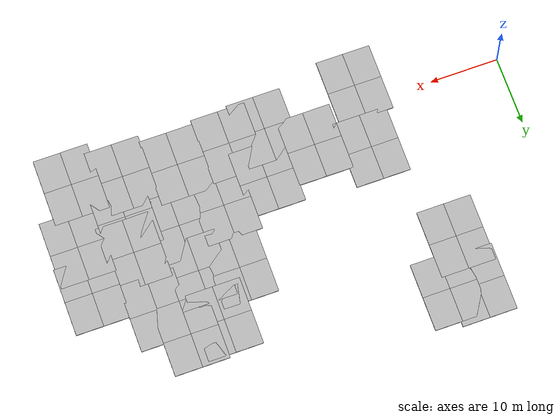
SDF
<sdf version="1.7">
 <world name="default">
  <model name="mud_box_clone_9">
   <static>1</static>
   <link name="link">
    <collision name="collision"><geometry><box><size>8 10 0.2</size></box></geometry></collision>
    <visual name="visual_1">
     <pose>-2 2.5 0 0 -0 0</pose>
     <cast_shadows>0</cast_shadows>
     <geometry><box><size>4 5 0.2</size></box></geometry>
     <material>
      <script>
       <uri>model://mud_box/materials/scripts</uri>
       <uri>model://mud_box/materials/textures</uri>
       <name>vrc/mud</name>
      </script>
     </material>
    </visual>
    <visual name="visual_2">
     <pose>2 2.5 0 0 -0 0</pose>
     <cast_shadows>0</cast_shadows>
     <geometry><box><size>4 5 0.2</size></box></geometry>
     <material>
      <script>
       <uri>model://mud_box/materials/scripts</uri>
       <uri>model://mud_box/materials/textures</uri>
       <name>vrc/mud</name>
      </script>
     </material>
    </visual>
    <visual name="visual_3">
     <pose>2 -2.5 0 0 -0 0</pose>
     <cast_shadows>0</cast_shadows>
     <geometry><box><size>4 5 0.2</size></box></geometry>
     <material>
      <script>
       <uri>model://mud_box/materials/scripts</uri>
       <uri>model://mud_box/materials/textures</uri>
       <name>vrc/mud</name>
      </script>
     </material>
    </visual>
    <visual name="visual_4">
     <pose>-2 -2.5 0 0 -0 0</pose>
     <cast_shadows>0</cast_shadows>
     <geometry><box><size>4 5 0.2</size></box></geometry>
     <material>
      <script>
       <uri>model://mud_box/materials/scripts</uri>
       <uri>model://mud_box/materials/textures</uri>
       <name>vrc/mud</name>
      </script>
     </material>
    </visual>
   </link>
   <pose>20.3748 -3.19662 0 0 -0 0</pose>
  </model>
  <model name="mud_box_clone_13">
   <static>1</static>
   <link name="link">
    <collision name="collision"><geometry><box><size>8 10 0.2</size></box></geometry></collision>
    <visual name="visual_1">
     <pose>-2 2.5 0 0 -0 0</pose>
     <cast_shadows>0</cast_shadows>
     <geometry><box><size>4 5 0.2</size></box></geometry>
     <material>
      <script>
       <uri>model://mud_box/materials/scripts</uri>
       <uri>model://mud_box/materials/textures</uri>
       <name>vrc/mud</name>
      </script>
     </material>
    </visual>
    <visual name="visual_2">
     <pose>2 2.5 0 0 -0 0</pose>
     <cast_shadows>0</cast_shadows>
     <geometry><box><size>4 5 0.2</size></box></geometry>
     <material>
      <script>
       <uri>model://mud_box/materials/scripts</uri>
       <uri>model://mud_box/materials/textures</uri>
       <name>vrc/mud</name>
      </script>
     </material>
    </visual>
    <visual name="visual_3">
     <pose>2 -2.5 0 0 -0 0</pose>
     <cast_shadows>0</cast_shadows>
     <geometry><box><size>4 5 0.2</size></box></geometry>
     <material>
      <script>
       <uri>model://mud_box/materials/scripts</uri>
       <uri>model://mud_box/materials/textures</uri>
       <name>vrc/mud</name>
      </script>
     </material>
    </visual>
    <visual name="visual_4">
     <pose>-2 -2.5 0 0 -0 0</pose>
     <cast_shadows>0</cast_shadows>
     <geometry><box><size>4 5 0.2</size></box></geometry>
     <material>
      <script>
       <uri>model://mud_box/materials/scripts</uri>
       <uri>model://mud_box/materials/textures</uri>
       <name>vrc/mud</name>
      </script>
     </material>
    </visual>
   </link>
   <pose>21.3167 6.26549 0 0 -0 0</pose>
  </model>
  <model name="mud_box_clone_14">
   <static>1</static>
   <link name="link">
    <collision name="collision"><geometry><box><size>8 10 0.2</size></box></geometry></collision>
    <visual name="visual_1">
     <pose>-2 2.5 0 0 -0 0</pose>
     <cast_shadows>0</cast_shadows>
     <geometry><box><size>4 5 0.2</size></box></geometry>
     <material>
      <script>
       <uri>model://mud_box/materials/scripts</uri>
       <uri>model://mud_box/materials/textures</uri>
       <name>vrc/mud</name>
      </script>
     </material>
    </visual>
    <visual name="visual_2">
     <pose>2 2.5 0 0 -0 0</pose>
     <cast_shadows>0</cast_shadows>
     <geometry><box><size>4 5 0.2</size></box></geometry>
     <material>
      <script>
       <uri>model://mud_box/materials/scripts</uri>
       <uri>model://mud_box/materials/textures</uri>
       <name>vrc/mud</name>
      </script>
     </material>
    </visual>
    <visual name="visual_3">
     <pose>2 -2.5 0 0 -0 0</pose>
     <cast_shadows>0</cast_shadows>
     <geometry><box><size>4 5 0.2</size></box></geometry>
     <material>
      <script>
       <uri>model://mud_box/materials/scripts</uri>
       <uri>model://mud_box/materials/textures</uri>
       <name>vrc/mud</name>
      </script>
     </material>
    </visual>
    <visual name="visual_4">
     <pose>-2 -2.5 0 0 -0 0</pose>
     <cast_shadows>0</cast_shadows>
     <geometry><box><size>4 5 0.2</size></box></geometry>
     <material>
      <script>
       <uri>model://mud_box/materials/scripts</uri>
       <uri>model://mud_box/materials/textures</uri>
       <name>vrc/mud</name>
      </script>
     </material>
    </visual>
   </link>
   <pose>28.7382 3.2623 0 0 -0 0</pose>
  </model>
  <model name="mud_box_clone_15">
   <static>1</static>
   <link name="link">
    <collision name="collision"><geometry><box><size>8 10 0.2</size></box></geometry></collision>
    <visual name="visual_1">
     <pose>-2 2.5 0 0 -0 0</pose>
     <cast_shadows>0</cast_shadows>
     <geometry><box><size>4 5 0.2</size></box></geometry>
     <material>
      <script>
       <uri>model://mud_box/materials/scripts</uri>
       <uri>model://mud_box/materials/textures</uri>
       <name>vrc/mud</name>
      </script>
     </material>
    </visual>
    <visual name="visual_2">
     <pose>2 2.5 0 0 -0 0</pose>
     <cast_shadows>0</cast_shadows>
     <geometry><box><size>4 5 0.2</size></box></geometry>
     <material>
      <script>
       <uri>model://mud_box/materials/scripts</uri>
       <uri>model://mud_box/materials/textures</uri>
       <name>vrc/mud</name>
      </script>
     </material>
    </visual>
    <visual name="visual_3">
     <pose>2 -2.5 0 0 -0 0</pose>
     <cast_shadows>0</cast_shadows>
     <geometry><box><size>4 5 0.2</size></box></geometry>
     <material>
      <script>
       <uri>model://mud_box/materials/scripts</uri>
       <uri>model://mud_box/materials/textures</uri>
       <name>vrc/mud</name>
      </script>
     </material>
    </visual>
    <visual name="visual_4">
     <pose>-2 -2.5 0 0 -0 0</pose>
     <cast_shadows>0</cast_shadows>
     <geometry><box><size>4 5 0.2</size></box></geometry>
     <material>
      <script>
       <uri>model://mud_box/materials/scripts</uri>
       <uri>model://mud_box/materials/textures</uri>
       <name>vrc/mud</name>
      </script>
     </material>
    </visual>
   </link>
   <pose>34.5719 -1.36093 0 0 -0 0</pose>
  </model>
  <model name="mud_box_clone_22">
   <static>1</static>
   <link name="link">
    <collision name="collision"><geometry><box><size>8 10 0.2</size></box></geometry></collision>
    <visual name="visual_1">
     <pose>-2 2.5 0 0 -0 0</pose>
     <cast_shadows>0</cast_shadows>
     <geometry><box><size>4 5 0.2</size></box></geometry>
     <material>
      <script>
       <uri>model://mud_box/materials/scripts</uri>
       <uri>model://mud_box/materials/textures</uri>
       <name>vrc/mud</name>
      </script>
     </material>
    </visual>
    <visual name="visual_2">
     <pose>2 2.5 0 0 -0 0</pose>
     <cast_shadows>0</cast_shadows>
     <geometry><box><size>4 5 0.2</size></box></geometry>
     <material>
      <script>
       <uri>model://mud_box/materials/scripts</uri>
       <uri>model://mud_box/materials/textures</uri>
       <name>vrc/mud</name>
      </script>
     </material>
    </visual>
    <visual name="visual_3">
     <pose>2 -2.5 0 0 -0 0</pose>
     <cast_shadows>0</cast_shadows>
     <geometry><box><size>4 5 0.2</size></box></geometry>
     <material>
      <script>
       <uri>model://mud_box/materials/scripts</uri>
       <uri>model://mud_box/materials/textures</uri>
       <name>vrc/mud</name>
      </script>
     </material>
    </visual>
    <visual name="visual_4">
     <pose>-2 -2.5 0 0 -0 0</pose>
     <cast_shadows>0</cast_shadows>
     <geometry><box><size>4 5 0.2</size></box></geometry>
     <material>
      <script>
       <uri>model://mud_box/materials/scripts</uri>
       <uri>model://mud_box/materials/textures</uri>
       <name>vrc/mud</name>
      </script>
     </material>
    </visual>
   </link>
   <pose>39.9973 -0.999067 0 0 -0 0</pose>
  </model>
  <model name="mud_box_clone_23">
   <static>1</static>
   <link name="link">
    <collision name="collision"><geometry><box><size>8 10 0.2</size></box></geometry></collision>
    <visual name="visual_1">
     <pose>-2 2.5 0 0 -0 0</pose>
     <cast_shadows>0</cast_shadows>
     <geometry><box><size>4 5 0.2</size></box></geometry>
     <material>
      <script>
       <uri>model://mud_box/materials/scripts</uri>
       <uri>model://mud_box/materials/textures</uri>
       <name>vrc/mud</name>
      </script>
     </material>
    </visual>
    <visual name="visual_2">
     <pose>2 2.5 0 0 -0 0</pose>
     <cast_shadows>0</cast_shadows>
     <geometry><box><size>4 5 0.2</size></box></geometry>
     <material>
      <script>
       <uri>model://mud_box/materials/scripts</uri>
       <uri>model://mud_box/materials/textures</uri>
       <name>vrc/mud</name>
      </script>
     </material>
    </visual>
    <visual name="visual_3">
     <pose>2 -2.5 0 0 -0 0</pose>
     <cast_shadows>0</cast_shadows>
     <geometry><box><size>4 5 0.2</size></box></geometry>
     <material>
      <script>
       <uri>model://mud_box/materials/scripts</uri>
       <uri>model://mud_box/materials/textures</uri>
       <name>vrc/mud</name>
      </script>
     </material>
    </visual>
    <visual name="visual_4">
     <pose>-2 -2.5 0 0 -0 0</pose>
     <cast_shadows>0</cast_shadows>
     <geometry><box><size>4 5 0.2</size></box></geometry>
     <material>
      <script>
       <uri>model://mud_box/materials/scripts</uri>
       <uri>model://mud_box/materials/textures</uri>
       <name>vrc/mud</name>
      </script>
     </material>
    </visual>
   </link>
   <pose>36.6587 5.53181 0 0 -0 0</pose>
  </model>
  <model name="mud_box_clone_24">
   <static>1</static>
   <link name="link">
    <collision name="collision"><geometry><box><size>8 10 0.2</size></box></geometry></collision>
    <visual name="visual_1">
     <pose>-2 2.5 0 0 -0 0</pose>
     <cast_shadows>0</cast_shadows>
     <geometry><box><size>4 5 0.2</size></box></geometry>
     <material>
      <script>
       <uri>model://mud_box/materials/scripts</uri>
       <uri>model://mud_box/materials/textures</uri>
       <name>vrc/mud</name>
      </script>
     </material>
    </visual>
    <visual name="visual_2">
     <pose>2 2.5 0 0 -0 0</pose>
     <cast_shadows>0</cast_shadows>
     <geometry><box><size>4 5 0.2</size></box></geometry>
     <material>
      <script>
       <uri>model://mud_box/materials/scripts</uri>
       <uri>model://mud_box/materials/textures</uri>
       <name>vrc/mud</name>
      </script>
     </material>
    </visual>
    <visual name="visual_3">
     <pose>2 -2.5 0 0 -0 0</pose>
     <cast_shadows>0</cast_shadows>
     <geometry><box><size>4 5 0.2</size></box></geometry>
     <material>
      <script>
       <uri>model://mud_box/materials/scripts</uri>
       <uri>model://mud_box/materials/textures</uri>
       <name>vrc/mud</name>
      </script>
     </material>
    </visual>
    <visual name="visual_4">
     <pose>-2 -2.5 0 0 -0 0</pose>
     <cast_shadows>0</cast_shadows>
     <geometry><box><size>4 5 0.2</size></box></geometry>
     <material>
      <script>
       <uri>model://mud_box/materials/scripts</uri>
       <uri>model://mud_box/materials/textures</uri>
       <name>vrc/mud</name>
      </script>
     </material>
    </visual>
   </link>
   <pose>43.725 7.4379 0 0 -0 0</pose>
  </model>
  <model name="mud_box_clone_26">
   <static>1</static>
   <link name="link">
    <collision name="collision"><geometry><box><size>8 10 0.2</size></box></geometry></collision>
    <visual name="visual_1">
     <pose>-2 2.5 0 0 -0 0</pose>
     <cast_shadows>0</cast_shadows>
     <geometry><box><size>4 5 0.2</size></box></geometry>
     <material>
      <script>
       <uri>model://mud_box/materials/scripts</uri>
       <uri>model://mud_box/materials/textures</uri>
       <name>vrc/mud</name>
      </script>
     </material>
    </visual>
    <visual name="visual_2">
     <pose>2 2.5 0 0 -0 0</pose>
     <cast_shadows>0</cast_shadows>
     <geometry><box><size>4 5 0.2</size></box></geometry>
     <material>
      <script>
       <uri>model://mud_box/materials/scripts</uri>
       <uri>model://mud_box/materials/textures</uri>
       <name>vrc/mud</name>
      </script>
     </material>
    </visual>
    <visual name="visual_3">
     <pose>2 -2.5 0 0 -0 0</pose>
     <cast_shadows>0</cast_shadows>
     <geometry><box><size>4 5 0.2</size></box></geometry>
     <material>
      <script>
       <uri>model://mud_box/materials/scripts</uri>
       <uri>model://mud_box/materials/textures</uri>
       <name>vrc/mud</name>
      </script>
     </material>
    </visual>
    <visual name="visual_4">
     <pose>-2 -2.5 0 0 -0 0</pose>
     <cast_shadows>0</cast_shadows>
     <geometry><box><size>4 5 0.2</size></box></geometry>
     <material>
      <script>
       <uri>model://mud_box/materials/scripts</uri>
       <uri>model://mud_box/materials/textures</uri>
       <name>vrc/mud</name>
      </script>
     </material>
    </visual>
   </link>
   <pose>47.8671 -0.424382 0 0 -0 0</pose>
  </model>
  <model name="mud_box_clone_28">
   <static>1</static>
   <link name="link">
    <collision name="collision"><geometry><box><size>8 10 0.2</size></box></geometry></collision>
    <visual name="visual_1">
     <pose>-2 2.5 0 0 -0 0</pose>
     <cast_shadows>0</cast_shadows>
     <geometry><box><size>4 5 0.2</size></box></geometry>
     <material>
      <script>
       <uri>model://mud_box/materials/scripts</uri>
       <uri>model://mud_box/materials/textures</uri>
       <name>vrc/mud</name>
      </script>
     </material>
    </visual>
    <visual name="visual_2">
     <pose>2 2.5 0 0 -0 0</pose>
     <cast_shadows>0</cast_shadows>
     <geometry><box><size>4 5 0.2</size></box></geometry>
     <material>
      <script>
       <uri>model://mud_box/materials/scripts</uri>
       <uri>model://mud_box/materials/textures</uri>
       <name>vrc/mud</name>
      </script>
     </material>
    </visual>
    <visual name="visual_3">
     <pose>2 -2.5 0 0 -0 0</pose>
     <cast_shadows>0</cast_shadows>
     <geometry><box><size>4 5 0.2</size></box></geometry>
     <material>
      <script>
       <uri>model://mud_box/materials/scripts</uri>
       <uri>model://mud_box/materials/textures</uri>
       <name>vrc/mud</name>
      </script>
     </material>
    </visual>
    <visual name="visual_4">
     <pose>-2 -2.5 0 0 -0 0</pose>
     <cast_shadows>0</cast_shadows>
     <geometry><box><size>4 5 0.2</size></box></geometry>
     <material>
      <script>
       <uri>model://mud_box/materials/scripts</uri>
       <uri>model://mud_box/materials/textures</uri>
       <name>vrc/mud</name>
      </script>
     </material>
    </visual>
   </link>
   <pose>50.5726 8.14811 0 0 -0 0</pose>
  </model>
  <model name="mud_box_clone_29">
   <static>1</static>
   <link name="link">
    <collision name="collision"><geometry><box><size>8 10 0.2</size></box></geometry></collision>
    <visual name="visual_1">
     <pose>-2 2.5 0 0 -0 0</pose>
     <cast_shadows>0</cast_shadows>
     <geometry><box><size>4 5 0.2</size></box></geometry>
     <material>
      <script>
       <uri>model://mud_box/materials/scripts</uri>
       <uri>model://mud_box/materials/textures</uri>
       <name>vrc/mud</name>
      </script>
     </material>
    </visual>
    <visual name="visual_2">
     <pose>2 2.5 0 0 -0 0</pose>
     <cast_shadows>0</cast_shadows>
     <geometry><box><size>4 5 0.2</size></box></geometry>
     <material>
      <script>
       <uri>model://mud_box/materials/scripts</uri>
       <uri>model://mud_box/materials/textures</uri>
       <name>vrc/mud</name>
      </script>
     </material>
    </visual>
    <visual name="visual_3">
     <pose>2 -2.5 0 0 -0 0</pose>
     <cast_shadows>0</cast_shadows>
     <geometry><box><size>4 5 0.2</size></box></geometry>
     <material>
      <script>
       <uri>model://mud_box/materials/scripts</uri>
       <uri>model://mud_box/materials/textures</uri>
       <name>vrc/mud</name>
      </script>
     </material>
    </visual>
    <visual name="visual_4">
     <pose>-2 -2.5 0 0 -0 0</pose>
     <cast_shadows>0</cast_shadows>
     <geometry><box><size>4 5 0.2</size></box></geometry>
     <material>
      <script>
       <uri>model://mud_box/materials/scripts</uri>
       <uri>model://mud_box/materials/textures</uri>
       <name>vrc/mud</name>
      </script>
     </material>
    </visual>
   </link>
   <pose>50.1882 15.2615 0 0 -0 0</pose>
  </model>
  <model name="mud_box_clone_32">
   <static>1</static>
   <link name="link">
    <collision name="collision"><geometry><box><size>8 10 0.2</size></box></geometry></collision>
    <visual name="visual_1">
     <pose>-2 2.5 0 0 -0 0</pose>
     <cast_shadows>0</cast_shadows>
     <geometry><box><size>4 5 0.2</size></box></geometry>
     <material>
      <script>
       <uri>model://mud_box/materials/scripts</uri>
       <uri>model://mud_box/materials/textures</uri>
       <name>vrc/mud</name>
      </script>
     </material>
    </visual>
    <visual name="visual_2">
     <pose>2 2.5 0 0 -0 0</pose>
     <cast_shadows>0</cast_shadows>
     <geometry><box><size>4 5 0.2</size></box></geometry>
     <material>
      <script>
       <uri>model://mud_box/materials/scripts</uri>
       <uri>model://mud_box/materials/textures</uri>
       <name>vrc/mud</name>
      </script>
     </material>
    </visual>
    <visual name="visual_3">
     <pose>2 -2.5 0 0 -0 0</pose>
     <cast_shadows>0</cast_shadows>
     <geometry><box><size>4 5 0.2</size></box></geometry>
     <material>
      <script>
       <uri>model://mud_box/materials/scripts</uri>
       <uri>model://mud_box/materials/textures</uri>
       <name>vrc/mud</name>
      </script>
     </material>
    </visual>
    <visual name="visual_4">
     <pose>-2 -2.5 0 0 -0 0</pose>
     <cast_shadows>0</cast_shadows>
     <geometry><box><size>4 5 0.2</size></box></geometry>
     <material>
      <script>
       <uri>model://mud_box/materials/scripts</uri>
       <uri>model://mud_box/materials/textures</uri>
       <name>vrc/mud</name>
      </script>
     </material>
    </visual>
   </link>
   <pose>55.6931 -1.35237 0 0 -0 0</pose>
  </model>
  <model name="mud_box_clone_33">
   <static>1</static>
   <link name="link">
    <collision name="collision"><geometry><box><size>8 10 0.2</size></box></geometry></collision>
    <visual name="visual_1">
     <pose>-2 2.5 0 0 -0 0</pose>
     <cast_shadows>0</cast_shadows>
     <geometry><box><size>4 5 0.2</size></box></geometry>
     <material>
      <script>
       <uri>model://mud_box/materials/scripts</uri>
       <uri>model://mud_box/materials/textures</uri>
       <name>vrc/mud</name>
      </script>
     </material>
    </visual>
    <visual name="visual_2">
     <pose>2 2.5 0 0 -0 0</pose>
     <cast_shadows>0</cast_shadows>
     <geometry><box><size>4 5 0.2</size></box></geometry>
     <material>
      <script>
       <uri>model://mud_box/materials/scripts</uri>
       <uri>model://mud_box/materials/textures</uri>
       <name>vrc/mud</name>
      </script>
     </material>
    </visual>
    <visual name="visual_3">
     <pose>2 -2.5 0 0 -0 0</pose>
     <cast_shadows>0</cast_shadows>
     <geometry><box><size>4 5 0.2</size></box></geometry>
     <material>
      <script>
       <uri>model://mud_box/materials/scripts</uri>
       <uri>model://mud_box/materials/textures</uri>
       <name>vrc/mud</name>
      </script>
     </material>
    </visual>
    <visual name="visual_4">
     <pose>-2 -2.5 0 0 -0 0</pose>
     <cast_shadows>0</cast_shadows>
     <geometry><box><size>4 5 0.2</size></box></geometry>
     <material>
      <script>
       <uri>model://mud_box/materials/scripts</uri>
       <uri>model://mud_box/materials/textures</uri>
       <name>vrc/mud</name>
      </script>
     </material>
    </visual>
   </link>
   <pose>57.2561 4.39806 0 0 -0 0</pose>
  </model>
  <model name="mud_box_clone_34">
   <static>1</static>
   <link name="link">
    <collision name="collision"><geometry><box><size>8 10 0.2</size></box></geometry></collision>
    <visual name="visual_1">
     <pose>-2 2.5 0 0 -0 0</pose>
     <cast_shadows>0</cast_shadows>
     <geometry><box><size>4 5 0.2</size></box></geometry>
     <material>
      <script>
       <uri>model://mud_box/materials/scripts</uri>
       <uri>model://mud_box/materials/textures</uri>
       <name>vrc/mud</name>
      </script>
     </material>
    </visual>
    <visual name="visual_2">
     <pose>2 2.5 0 0 -0 0</pose>
     <cast_shadows>0</cast_shadows>
     <geometry><box><size>4 5 0.2</size></box></geometry>
     <material>
      <script>
       <uri>model://mud_box/materials/scripts</uri>
       <uri>model://mud_box/materials/textures</uri>
       <name>vrc/mud</name>
      </script>
     </material>
    </visual>
    <visual name="visual_3">
     <pose>2 -2.5 0 0 -0 0</pose>
     <cast_shadows>0</cast_shadows>
     <geometry><box><size>4 5 0.2</size></box></geometry>
     <material>
      <script>
       <uri>model://mud_box/materials/scripts</uri>
       <uri>model://mud_box/materials/textures</uri>
       <name>vrc/mud</name>
      </script>
     </material>
    </visual>
    <visual name="visual_4">
     <pose>-2 -2.5 0 0 -0 0</pose>
     <cast_shadows>0</cast_shadows>
     <geometry><box><size>4 5 0.2</size></box></geometry>
     <material>
      <script>
       <uri>model://mud_box/materials/scripts</uri>
       <uri>model://mud_box/materials/textures</uri>
       <name>vrc/mud</name>
      </script>
     </material>
    </visual>
   </link>
   <pose>57.7878 9.74902 0 0 -0 0</pose>
  </model>
  <model name="mud_box_clone_35">
   <static>1</static>
   <link name="link">
    <collision name="collision"><geometry><box><size>8 10 0.2</size></box></geometry></collision>
    <visual name="visual_1">
     <pose>-2 2.5 0 0 -0 0</pose>
     <cast_shadows>0</cast_shadows>
     <geometry><box><size>4 5 0.2</size></box></geometry>
     <material>
      <script>
       <uri>model://mud_box/materials/scripts</uri>
       <uri>model://mud_box/materials/textures</uri>
       <name>vrc/mud</name>
      </script>
     </material>
    </visual>
    <visual name="visual_2">
     <pose>2 2.5 0 0 -0 0</pose>
     <cast_shadows>0</cast_shadows>
     <geometry><box><size>4 5 0.2</size></box></geometry>
     <material>
      <script>
       <uri>model://mud_box/materials/scripts</uri>
       <uri>model://mud_box/materials/textures</uri>
       <name>vrc/mud</name>
      </script>
     </material>
    </visual>
    <visual name="visual_3">
     <pose>2 -2.5 0 0 -0 0</pose>
     <cast_shadows>0</cast_shadows>
     <geometry><box><size>4 5 0.2</size></box></geometry>
     <material>
      <script>
       <uri>model://mud_box/materials/scripts</uri>
       <uri>model://mud_box/materials/textures</uri>
       <name>vrc/mud</name>
      </script>
     </material>
    </visual>
    <visual name="visual_4">
     <pose>-2 -2.5 0 0 -0 0</pose>
     <cast_shadows>0</cast_shadows>
     <geometry><box><size>4 5 0.2</size></box></geometry>
     <material>
      <script>
       <uri>model://mud_box/materials/scripts</uri>
       <uri>model://mud_box/materials/textures</uri>
       <name>vrc/mud</name>
      </script>
     </material>
    </visual>
   </link>
   <pose>44.6791 16.7579 0 0 -0 0</pose>
  </model>
  <model name="mud_box_clone_45">
   <static>1</static>
   <link name="link">
    <collision name="collision"><geometry><box><size>8 10 0.2</size></box></geometry></collision>
    <visual name="visual_1">
     <pose>-2 2.5 0 0 -0 0</pose>
     <cast_shadows>0</cast_shadows>
     <geometry><box><size>4 5 0.2</size></box></geometry>
     <material>
      <script>
       <uri>model://mud_box/materials/scripts</uri>
       <uri>model://mud_box/materials/textures</uri>
       <name>vrc/mud</name>
      </script>
     </material>
    </visual>
    <visual name="visual_2">
     <pose>2 2.5 0 0 -0 0</pose>
     <cast_shadows>0</cast_shadows>
     <geometry><box><size>4 5 0.2</size></box></geometry>
     <material>
      <script>
       <uri>model://mud_box/materials/scripts</uri>
       <uri>model://mud_box/materials/textures</uri>
       <name>vrc/mud</name>
      </script>
     </material>
    </visual>
    <visual name="visual_3">
     <pose>2 -2.5 0 0 -0 0</pose>
     <cast_shadows>0</cast_shadows>
     <geometry><box><size>4 5 0.2</size></box></geometry>
     <material>
      <script>
       <uri>model://mud_box/materials/scripts</uri>
       <uri>model://mud_box/materials/textures</uri>
       <name>vrc/mud</name>
      </script>
     </material>
    </visual>
    <visual name="visual_4">
     <pose>-2 -2.5 0 0 -0 0</pose>
     <cast_shadows>0</cast_shadows>
     <geometry><box><size>4 5 0.2</size></box></geometry>
     <material>
      <script>
       <uri>model://mud_box/materials/scripts</uri>
       <uri>model://mud_box/materials/textures</uri>
       <name>vrc/mud</name>
      </script>
     </material>
    </visual>
   </link>
   <pose>62.8094 -2.63073 0 0 -0 0</pose>
  </model>
  <model name="mud_box_clone_46">
   <static>1</static>
   <link name="link">
    <collision name="collision"><geometry><box><size>8 10 0.2</size></box></geometry></collision>
    <visual name="visual_1">
     <pose>-2 2.5 0 0 -0 0</pose>
     <cast_shadows>0</cast_shadows>
     <geometry><box><size>4 5 0.2</size></box></geometry>
     <material>
      <script>
       <uri>model://mud_box/materials/scripts</uri>
       <uri>model://mud_box/materials/textures</uri>
       <name>vrc/mud</name>
      </script>
     </material>
    </visual>
    <visual name="visual_2">
     <pose>2 2.5 0 0 -0 0</pose>
     <cast_shadows>0</cast_shadows>
     <geometry><box><size>4 5 0.2</size></box></geometry>
     <material>
      <script>
       <uri>model://mud_box/materials/scripts</uri>
       <uri>model://mud_box/materials/textures</uri>
       <name>vrc/mud</name>
      </script>
     </material>
    </visual>
    <visual name="visual_3">
     <pose>2 -2.5 0 0 -0 0</pose>
     <cast_shadows>0</cast_shadows>
     <geometry><box><size>4 5 0.2</size></box></geometry>
     <material>
      <script>
       <uri>model://mud_box/materials/scripts</uri>
       <uri>model://mud_box/materials/textures</uri>
       <name>vrc/mud</name>
      </script>
     </material>
    </visual>
    <visual name="visual_4">
     <pose>-2 -2.5 0 0 -0 0</pose>
     <cast_shadows>0</cast_shadows>
     <geometry><box><size>4 5 0.2</size></box></geometry>
     <material>
      <script>
       <uri>model://mud_box/materials/scripts</uri>
       <uri>model://mud_box/materials/textures</uri>
       <name>vrc/mud</name>
      </script>
     </material>
    </visual>
   </link>
   <pose>64.9048 6.41387 0 0 -0 0</pose>
  </model>
  <model name="mud_box_clone_47">
   <static>1</static>
   <link name="link">
    <collision name="collision"><geometry><box><size>8 10 0.2</size></box></geometry></collision>
    <visual name="visual_1">
     <pose>-2 2.5 0 0 -0 0</pose>
     <cast_shadows>0</cast_shadows>
     <geometry><box><size>4 5 0.2</size></box></geometry>
     <material>
      <script>
       <uri>model://mud_box/materials/scripts</uri>
       <uri>model://mud_box/materials/textures</uri>
       <name>vrc/mud</name>
      </script>
     </material>
    </visual>
    <visual name="visual_2">
     <pose>2 2.5 0 0 -0 0</pose>
     <cast_shadows>0</cast_shadows>
     <geometry><box><size>4 5 0.2</size></box></geometry>
     <material>
      <script>
       <uri>model://mud_box/materials/scripts</uri>
       <uri>model://mud_box/materials/textures</uri>
       <name>vrc/mud</name>
      </script>
     </material>
    </visual>
    <visual name="visual_3">
     <pose>2 -2.5 0 0 -0 0</pose>
     <cast_shadows>0</cast_shadows>
     <geometry><box><size>4 5 0.2</size></box></geometry>
     <material>
      <script>
       <uri>model://mud_box/materials/scripts</uri>
       <uri>model://mud_box/materials/textures</uri>
       <name>vrc/mud</name>
      </script>
     </material>
    </visual>
    <visual name="visual_4">
     <pose>-2 -2.5 0 0 -0 0</pose>
     <cast_shadows>0</cast_shadows>
     <geometry><box><size>4 5 0.2</size></box></geometry>
     <material>
      <script>
       <uri>model://mud_box/materials/scripts</uri>
       <uri>model://mud_box/materials/textures</uri>
       <name>vrc/mud</name>
      </script>
     </material>
    </visual>
   </link>
   <pose>65.1047 13.4451 0 0 -0 0</pose>
  </model>
  <model name="mud_box_clone_48">
   <static>1</static>
   <link name="link">
    <collision name="collision"><geometry><box><size>8 10 0.2</size></box></geometry></collision>
    <visual name="visual_1">
     <pose>-2 2.5 0 0 -0 0</pose>
     <cast_shadows>0</cast_shadows>
     <geometry><box><size>4 5 0.2</size></box></geometry>
     <material>
      <script>
       <uri>model://mud_box/materials/scripts</uri>
       <uri>model://mud_box/materials/textures</uri>
       <name>vrc/mud</name>
      </script>
     </material>
    </visual>
    <visual name="visual_2">
     <pose>2 2.5 0 0 -0 0</pose>
     <cast_shadows>0</cast_shadows>
     <geometry><box><size>4 5 0.2</size></box></geometry>
     <material>
      <script>
       <uri>model://mud_box/materials/scripts</uri>
       <uri>model://mud_box/materials/textures</uri>
       <name>vrc/mud</name>
      </script>
     </material>
    </visual>
    <visual name="visual_3">
     <pose>2 -2.5 0 0 -0 0</pose>
     <cast_shadows>0</cast_shadows>
     <geometry><box><size>4 5 0.2</size></box></geometry>
     <material>
      <script>
       <uri>model://mud_box/materials/scripts</uri>
       <uri>model://mud_box/materials/textures</uri>
       <name>vrc/mud</name>
      </script>
     </material>
    </visual>
    <visual name="visual_4">
     <pose>-2 -2.5 0 0 -0 0</pose>
     <cast_shadows>0</cast_shadows>
     <geometry><box><size>4 5 0.2</size></box></geometry>
     <material>
      <script>
       <uri>model://mud_box/materials/scripts</uri>
       <uri>model://mud_box/materials/textures</uri>
       <name>vrc/mud</name>
      </script>
     </material>
    </visual>
   </link>
   <pose>57.3993 18.6853 0 0 -0 0</pose>
  </model>
  <model name="mud_box_clone_49">
   <static>1</static>
   <link name="link">
    <collision name="collision"><geometry><box><size>8 10 0.2</size></box></geometry></collision>
    <visual name="visual_1">
     <pose>-2 2.5 0 0 -0 0</pose>
     <cast_shadows>0</cast_shadows>
     <geometry><box><size>4 5 0.2</size></box></geometry>
     <material>
      <script>
       <uri>model://mud_box/materials/scripts</uri>
       <uri>model://mud_box/materials/textures</uri>
       <name>vrc/mud</name>
      </script>
     </material>
    </visual>
    <visual name="visual_2">
     <pose>2 2.5 0 0 -0 0</pose>
     <cast_shadows>0</cast_shadows>
     <geometry><box><size>4 5 0.2</size></box></geometry>
     <material>
      <script>
       <uri>model://mud_box/materials/scripts</uri>
       <uri>model://mud_box/materials/textures</uri>
       <name>vrc/mud</name>
      </script>
     </material>
    </visual>
    <visual name="visual_3">
     <pose>2 -2.5 0 0 -0 0</pose>
     <cast_shadows>0</cast_shadows>
     <geometry><box><size>4 5 0.2</size></box></geometry>
     <material>
      <script>
       <uri>model://mud_box/materials/scripts</uri>
       <uri>model://mud_box/materials/textures</uri>
       <name>vrc/mud</name>
      </script>
     </material>
    </visual>
    <visual name="visual_4">
     <pose>-2 -2.5 0 0 -0 0</pose>
     <cast_shadows>0</cast_shadows>
     <geometry><box><size>4 5 0.2</size></box></geometry>
     <material>
      <script>
       <uri>model://mud_box/materials/scripts</uri>
       <uri>model://mud_box/materials/textures</uri>
       <name>vrc/mud</name>
      </script>
     </material>
    </visual>
   </link>
   <pose>49.1774 23.1166 0 0 -0 0</pose>
  </model>
  <model name="mud_box_clone_50">
   <static>1</static>
   <link name="link">
    <collision name="collision"><geometry><box><size>8 10 0.2</size></box></geometry></collision>
    <visual name="visual_1">
     <pose>-2 2.5 0 0 -0 0</pose>
     <cast_shadows>0</cast_shadows>
     <geometry><box><size>4 5 0.2</size></box></geometry>
     <material>
      <script>
       <uri>model://mud_box/materials/scripts</uri>
       <uri>model://mud_box/materials/textures</uri>
       <name>vrc/mud</name>
      </script>
     </material>
    </visual>
    <visual name="visual_2">
     <pose>2 2.5 0 0 -0 0</pose>
     <cast_shadows>0</cast_shadows>
     <geometry><box><size>4 5 0.2</size></box></geometry>
     <material>
      <script>
       <uri>model://mud_box/materials/scripts</uri>
       <uri>model://mud_box/materials/textures</uri>
       <name>vrc/mud</name>
      </script>
     </material>
    </visual>
    <visual name="visual_3">
     <pose>2 -2.5 0 0 -0 0</pose>
     <cast_shadows>0</cast_shadows>
     <geometry><box><size>4 5 0.2</size></box></geometry>
     <material>
      <script>
       <uri>model://mud_box/materials/scripts</uri>
       <uri>model://mud_box/materials/textures</uri>
       <name>vrc/mud</name>
      </script>
     </material>
    </visual>
    <visual name="visual_4">
     <pose>-2 -2.5 0 0 -0 0</pose>
     <cast_shadows>0</cast_shadows>
     <geometry><box><size>4 5 0.2</size></box></geometry>
     <material>
      <script>
       <uri>model://mud_box/materials/scripts</uri>
       <uri>model://mud_box/materials/textures</uri>
       <name>vrc/mud</name>
      </script>
     </material>
    </visual>
   </link>
   <pose>54.1847 23.5405 0 0 -0 0</pose>
  </model>
  <model name="mud_box_clone_42_clone_8">
   <static>1</static>
   <link name="link">
    <collision name="collision"><geometry><box><size>8 10 0.2</size></box></geometry></collision>
    <visual name="visual_1">
     <pose>-2 2.5 0 0 -0 0</pose>
     <cast_shadows>0</cast_shadows>
     <geometry><box><size>4 5 0.2</size></box></geometry>
     <material>
      <script>
       <uri>model://mud_box/materials/scripts</uri>
       <uri>model://mud_box/materials/textures</uri>
       <name>vrc/mud</name>
      </script>
     </material>
    </visual>
    <visual name="visual_2">
     <pose>2 2.5 0 0 -0 0</pose>
     <cast_shadows>0</cast_shadows>
     <geometry><box><size>4 5 0.2</size></box></geometry>
     <material>
      <script>
       <uri>model://mud_box/materials/scripts</uri>
       <uri>model://mud_box/materials/textures</uri>
       <name>vrc/mud</name>
      </script>
     </material>
    </visual>
    <visual name="visual_3">
     <pose>2 -2.5 0 0 -0 0</pose>
     <cast_shadows>0</cast_shadows>
     <geometry><box><size>4 5 0.2</size></box></geometry>
     <material>
      <script>
       <uri>model://mud_box/materials/scripts</uri>
       <uri>model://mud_box/materials/textures</uri>
       <name>vrc/mud</name>
      </script>
     </material>
    </visual>
    <visual name="visual_4">
     <pose>-2 -2.5 0 0 -0 0</pose>
     <cast_shadows>0</cast_shadows>
     <geometry><box><size>4 5 0.2</size></box></geometry>
     <material>
      <script>
       <uri>model://mud_box/materials/scripts</uri>
       <uri>model://mud_box/materials/textures</uri>
       <name>vrc/mud</name>
      </script>
     </material>
    </visual>
   </link>
   <pose>14.7986 22.6081 0 0 -0 0</pose>
  </model>
  <model name="mud_box_clone_42_clone_12">
   <static>1</static>
   <link name="link">
    <collision name="collision"><geometry><box><size>8 10 0.2</size></box></geometry></collision>
    <visual name="visual_1">
     <pose>-2 2.5 0 0 -0 0</pose>
     <cast_shadows>0</cast_shadows>
     <geometry><box><size>4 5 0.2</size></box></geometry>
     <material>
      <script>
       <uri>model://mud_box/materials/scripts</uri>
       <uri>model://mud_box/materials/textures</uri>
       <name>vrc/mud</name>
      </script>
     </material>
    </visual>
    <visual name="visual_2">
     <pose>2 2.5 0 0 -0 0</pose>
     <cast_shadows>0</cast_shadows>
     <geometry><box><size>4 5 0.2</size></box></geometry>
     <material>
      <script>
       <uri>model://mud_box/materials/scripts</uri>
       <uri>model://mud_box/materials/textures</uri>
       <name>vrc/mud</name>
      </script>
     </material>
    </visual>
    <visual name="visual_3">
     <pose>2 -2.5 0 0 -0 0</pose>
     <cast_shadows>0</cast_shadows>
     <geometry><box><size>4 5 0.2</size></box></geometry>
     <material>
      <script>
       <uri>model://mud_box/materials/scripts</uri>
       <uri>model://mud_box/materials/textures</uri>
       <name>vrc/mud</name>
      </script>
     </material>
    </visual>
    <visual name="visual_4">
     <pose>-2 -2.5 0 0 -0 0</pose>
     <cast_shadows>0</cast_shadows>
     <geometry><box><size>4 5 0.2</size></box></geometry>
     <material>
      <script>
       <uri>model://mud_box/materials/scripts</uri>
       <uri>model://mud_box/materials/textures</uri>
       <name>vrc/mud</name>
      </script>
     </material>
    </visual>
   </link>
   <pose>14.5681 30.2246 0 0 -0 0</pose>
  </model>
  <model name="mud_box_clone_42_clone_13">
   <static>1</static>
   <link name="link">
    <collision name="collision"><geometry><box><size>8 10 0.2</size></box></geometry></collision>
    <visual name="visual_1">
     <pose>-2 2.5 0 0 -0 0</pose>
     <cast_shadows>0</cast_shadows>
     <geometry><box><size>4 5 0.2</size></box></geometry>
     <material>
      <script>
       <uri>model://mud_box/materials/scripts</uri>
       <uri>model://mud_box/materials/textures</uri>
       <name>vrc/mud</name>
      </script>
     </material>
    </visual>
    <visual name="visual_2">
     <pose>2 2.5 0 0 -0 0</pose>
     <cast_shadows>0</cast_shadows>
     <geometry><box><size>4 5 0.2</size></box></geometry>
     <material>
      <script>
       <uri>model://mud_box/materials/scripts</uri>
       <uri>model://mud_box/materials/textures</uri>
       <name>vrc/mud</name>
      </script>
     </material>
    </visual>
    <visual name="visual_3">
     <pose>2 -2.5 0 0 -0 0</pose>
     <cast_shadows>0</cast_shadows>
     <geometry><box><size>4 5 0.2</size></box></geometry>
     <material>
      <script>
       <uri>model://mud_box/materials/scripts</uri>
       <uri>model://mud_box/materials/textures</uri>
       <name>vrc/mud</name>
      </script>
     </material>
    </visual>
    <visual name="visual_4">
     <pose>-2 -2.5 0 0 -0 0</pose>
     <cast_shadows>0</cast_shadows>
     <geometry><box><size>4 5 0.2</size></box></geometry>
     <material>
      <script>
       <uri>model://mud_box/materials/scripts</uri>
       <uri>model://mud_box/materials/textures</uri>
       <name>vrc/mud</name>
      </script>
     </material>
    </visual>
   </link>
   <pose>18.3272 29.4652 0 0 -0 0</pose>
  </model>
 </world>
</sdf>
